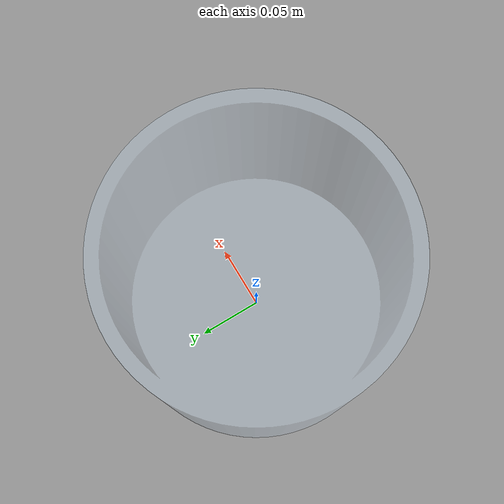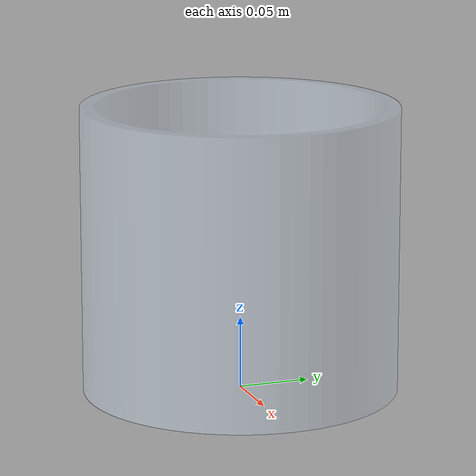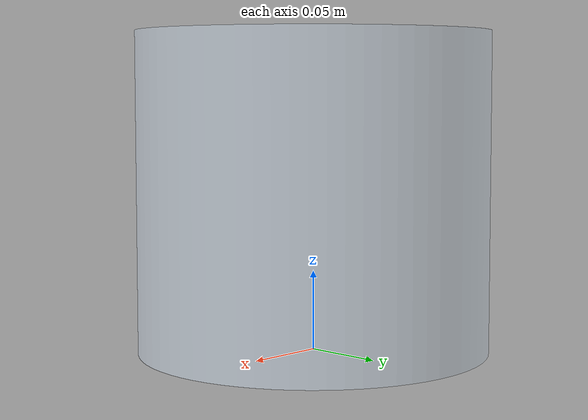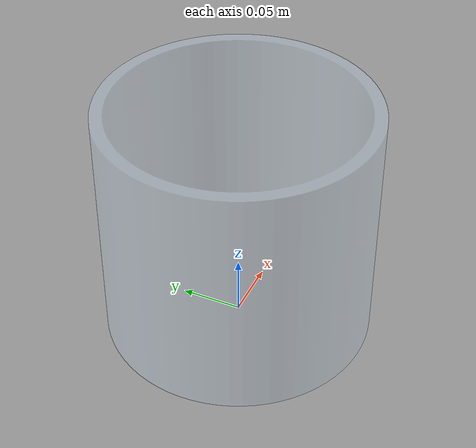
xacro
<?xml version="1.0"?>
<robot xmlns:xacro="http://wiki.ros.org/xacro" name="container">

  <xacro:arg name="origin_xyz" default="0 0 0"/>
  <xacro:arg name="origin_rpy" default="0 0 0"/>

  <link name="world"/>

  <link name="container">
    <visual>
      <origin xyz="0 0 0" rpy="0 0 0"/>
      <geometry>
        <mesh filename="file://$(find skarpulator_description)/models/meshes/container.stl"/>
      </geometry>
      <material name="glass">
        <color rgba="0.8 0.9 1.0 0.3"/>
      </material>
    </visual>
    <collision>
      <origin xyz="0 0 0" rpy="0 0 0"/>
      <geometry>
        <mesh filename="file://$(find skarpulator_description)/models/meshes/container.stl"/>
      </geometry>
    </collision>
    <inertial>
      <mass value="1"/>
      <inertia
        ixx="0.35445"
        ixy="0.0"
        ixz="0.0"
        iyy="0.35445"
        iyz="0.0"
        izz="0.7089"
      />
    </inertial>
  </link>

  <joint name="container_joint" type="fixed">
    <origin xyz="$(arg origin_xyz)" rpy="$(arg origin_rpy)"/>
    <parent link="world"/>
    <child link="container"/>
  </joint>

</robot>
